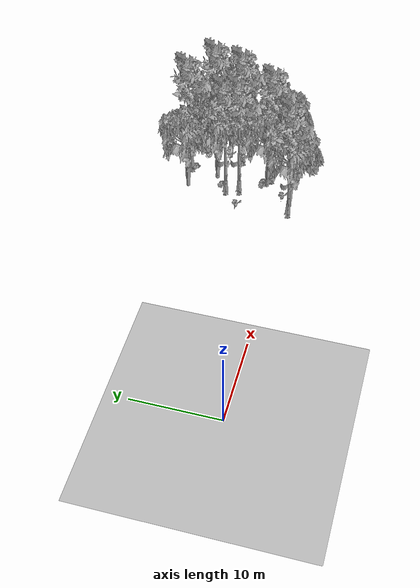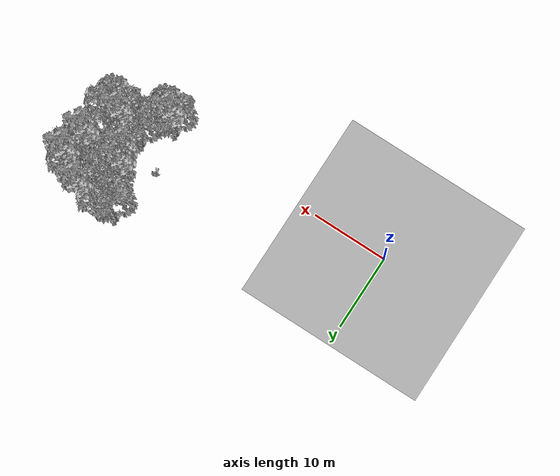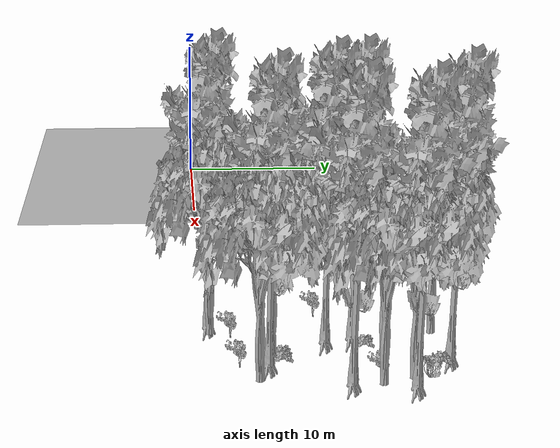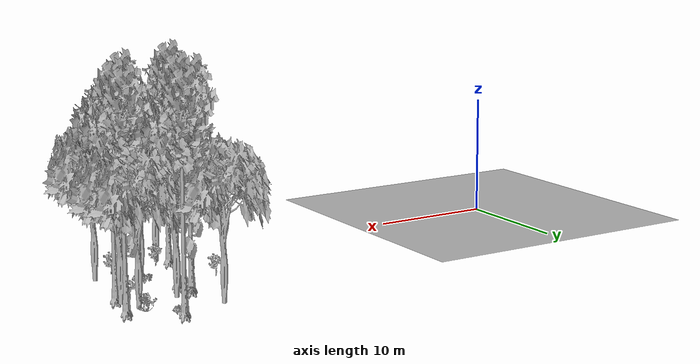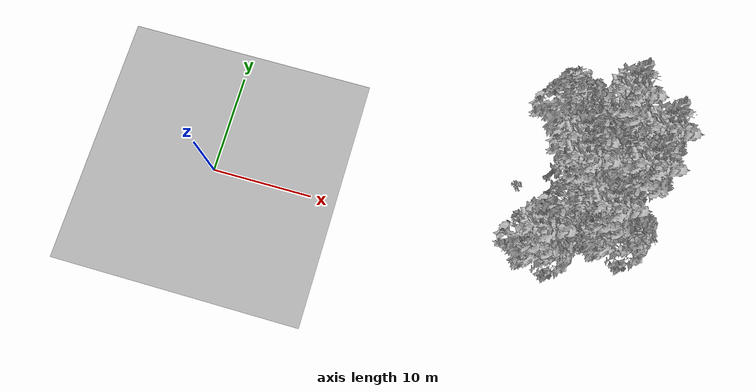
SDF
<sdf version="1.7">
 <world name="default">
  <model name="ground_plane">
   <static>1</static>
   <link name="link">
    <collision name="collision">
     <pose>-50 0 0 0 -0 0</pose>
     <geometry><plane><normal>0 0 1</normal><size>80 80</size></plane></geometry>
     <surface><contact><ode><min_depth>0.01</min_depth><max_vel>0</max_vel></ode></contact></surface>
    </collision>
    <visual name="grass">
     <cast_shadows>0</cast_shadows>
     <geometry>
      <mesh>
       <scale>0.46714285714285714 0.46714285714285714 0.1</scale>
       <uri>file://grass_plane/meshes/grass_plane.dae</uri>
      </mesh>
     </geometry>
    </visual>
   </link>
  </model>
  <model name="Tree 14">
   <static>1</static>
   <pose>35.54837640141666 3.432613627975698 0 1.57079 -0 0</pose>
   <link name="link">
    <collision name="collision">
     <geometry><mesh><scale>3.5 5 3.5</scale><uri>model://tree_9/meshes/tree_9.obj</uri></mesh></geometry>
    </collision>
    <visual name="visual">
     <geometry><mesh><scale>3.5 5 3.5</scale><uri>model://tree_9/meshes/tree_9.obj</uri></mesh></geometry>
    </visual>
   </link>
  </model>
  <model name="Tree 30">
   <static>1</static>
   <pose>31.346710138533155 0.31831738416364175 0 1.57079 -0 0</pose>
   <link name="link">
    <collision name="collision">
     <geometry><mesh><scale>3.5 5 3.5</scale><uri>model://tree_2/meshes/tree_2.obj</uri></mesh></geometry>
    </collision>
    <visual name="visual">
     <geometry><mesh><scale>3.5 5 3.5</scale><uri>model://tree_2/meshes/tree_2.obj</uri></mesh></geometry>
    </visual>
   </link>
  </model>
  <model name="Tree 116">
   <static>1</static>
   <pose>38.49103548607417 11.014796412921783 0 1.57079 -0 0</pose>
   <link name="link">
    <collision name="collision">
     <geometry><mesh><scale>3.5 5 3.5</scale><uri>model://tree_9/meshes/tree_9.obj</uri></mesh></geometry>
    </collision>
    <visual name="visual">
     <geometry><mesh><scale>3.5 5 3.5</scale><uri>model://tree_9/meshes/tree_9.obj</uri></mesh></geometry>
    </visual>
   </link>
  </model>
  <model name="Tree 188">
   <static>1</static>
   <pose>31.75541068733365 12.997560349149609 0 1.57079 -0 0</pose>
   <link name="link">
    <collision name="collision">
     <geometry><mesh><scale>3.5 5 3.5</scale><uri>model://tree_2/meshes/tree_2.obj</uri></mesh></geometry>
    </collision>
    <visual name="visual">
     <geometry><mesh><scale>3.5 5 3.5</scale><uri>model://tree_2/meshes/tree_2.obj</uri></mesh></geometry>
    </visual>
   </link>
  </model>
  <model name="Tree 311">
   <static>1</static>
   <pose>37.43862699710185 10.98620305104319 0 1.57079 -0 0</pose>
   <link name="link">
    <collision name="collision">
     <geometry><mesh><scale>3.5 5 3.5</scale><uri>model://tree_2/meshes/tree_2.obj</uri></mesh></geometry>
    </collision>
    <visual name="visual">
     <geometry><mesh><scale>3.5 5 3.5</scale><uri>model://tree_2/meshes/tree_2.obj</uri></mesh></geometry>
    </visual>
   </link>
  </model>
  <model name="Tree 350">
   <static>1</static>
   <pose>34.01714777694417 9.904949937485256 0 1.57079 -0 0</pose>
   <link name="link">
    <collision name="collision">
     <geometry><mesh><scale>3.5 5 3.5</scale><uri>model://tree_2/meshes/tree_2.obj</uri></mesh></geometry>
    </collision>
    <visual name="visual">
     <geometry><mesh><scale>3.5 5 3.5</scale><uri>model://tree_2/meshes/tree_2.obj</uri></mesh></geometry>
    </visual>
   </link>
  </model>
  <model name="Tree 386">
   <static>1</static>
   <pose>38.07354339036192 9.273002710352472 0 1.57079 -0 0</pose>
   <link name="link">
    <collision name="collision">
     <geometry><mesh><scale>3.5 5 3.5</scale><uri>model://tree_2/meshes/tree_2.obj</uri></mesh></geometry>
    </collision>
    <visual name="visual">
     <geometry><mesh><scale>3.5 5 3.5</scale><uri>model://tree_2/meshes/tree_2.obj</uri></mesh></geometry>
    </visual>
   </link>
  </model>
  <model name="Tree 396">
   <static>1</static>
   <pose>35.148854757798645 13.474000785816436 0 1.57079 -0 0</pose>
   <link name="link">
    <collision name="collision">
     <geometry><mesh><scale>3.5 5 3.5</scale><uri>model://tree_9/meshes/tree_9.obj</uri></mesh></geometry>
    </collision>
    <visual name="visual">
     <geometry><mesh><scale>3.5 5 3.5</scale><uri>model://tree_9/meshes/tree_9.obj</uri></mesh></geometry>
    </visual>
   </link>
  </model>
  <model name="Tree 478">
   <static>1</static>
   <pose>37.91706673461995 7.678815865900255 0 1.57079 -0 0</pose>
   <link name="link">
    <collision name="collision">
     <geometry><mesh><scale>3.5 5 3.5</scale><uri>model://tree_9/meshes/tree_9.obj</uri></mesh></geometry>
    </collision>
    <visual name="visual">
     <geometry><mesh><scale>3.5 5 3.5</scale><uri>model://tree_9/meshes/tree_9.obj</uri></mesh></geometry>
    </visual>
   </link>
  </model>
  <model name="Tree 488">
   <static>1</static>
   <pose>34.081910887290775 3.6773983197589573 0 1.57079 -0 0</pose>
   <link name="link">
    <collision name="collision">
     <geometry><mesh><scale>3.5 5 3.5</scale><uri>model://tree_2/meshes/tree_2.obj</uri></mesh></geometry>
    </collision>
    <visual name="visual">
     <geometry><mesh><scale>3.5 5 3.5</scale><uri>model://tree_2/meshes/tree_2.obj</uri></mesh></geometry>
    </visual>
   </link>
  </model>
  <model name="Tree 548">
   <static>1</static>
   <pose>32.20801763345338 8.394824363013882 0 1.57079 -0 0</pose>
   <link name="link">
    <collision name="collision">
     <geometry><mesh><scale>3.5 5 3.5</scale><uri>model://tree_9/meshes/tree_9.obj</uri></mesh></geometry>
    </collision>
    <visual name="visual">
     <geometry><mesh><scale>3.5 5 3.5</scale><uri>model://tree_9/meshes/tree_9.obj</uri></mesh></geometry>
    </visual>
   </link>
  </model>
  <model name="Tree 565">
   <static>1</static>
   <pose>32.61960503621012 6.824261044901476 0 1.57079 -0 0</pose>
   <link name="link">
    <collision name="collision">
     <geometry><mesh><scale>3.5 5 3.5</scale><uri>model://tree_9/meshes/tree_9.obj</uri></mesh></geometry>
    </collision>
    <visual name="visual">
     <geometry><mesh><scale>3.5 5 3.5</scale><uri>model://tree_9/meshes/tree_9.obj</uri></mesh></geometry>
    </visual>
   </link>
  </model>
  <model name="Tree 575">
   <static>1</static>
   <pose>30.30354869961772 0.2547916488059414 0 1.57079 -0 0</pose>
   <link name="link">
    <collision name="collision">
     <geometry><mesh><scale>3.5 5 3.5</scale><uri>model://tree_9/meshes/tree_9.obj</uri></mesh></geometry>
    </collision>
    <visual name="visual">
     <geometry><mesh><scale>3.5 5 3.5</scale><uri>model://tree_9/meshes/tree_9.obj</uri></mesh></geometry>
    </visual>
   </link>
  </model>
  <model name="Tree 637">
   <static>1</static>
   <pose>37.410260205318195 2.7590621265088444 0 1.57079 -0 0</pose>
   <link name="link">
    <collision name="collision">
     <geometry><mesh><scale>3.5 5 3.5</scale><uri>model://tree_2/meshes/tree_2.obj</uri></mesh></geometry>
    </collision>
    <visual name="visual">
     <geometry><mesh><scale>3.5 5 3.5</scale><uri>model://tree_2/meshes/tree_2.obj</uri></mesh></geometry>
    </visual>
   </link>
  </model>
  <model name="Bush 11">
   <static>1</static>
   <pose>35.817970439966004 1.8056202392931908 0 1.57079 -0 0</pose>
   <link name="link">
    <collision name="collision">
     <geometry><mesh><scale>2 2 2</scale><uri>model://bush_5/meshes/bush_5.obj</uri></mesh></geometry>
     <surface><contact><collide_without_contact>false</collide_without_contact></contact></surface>
    </collision>
    <visual name="visual">
     <geometry><mesh><scale>2 2 2</scale><uri>model://bush_5/meshes/bush_5.obj</uri></mesh></geometry>
    </visual>
   </link>
  </model>
  <model name="Bush 209">
   <static>1</static>
   <pose>34.09453291568184 4.251735187424366 0 1.57079 -0 0</pose>
   <link name="link">
    <collision name="collision">
     <geometry><mesh><scale>2 2 2</scale><uri>model://bush_2/meshes/bush_2.obj</uri></mesh></geometry>
     <surface><contact><collide_without_contact>false</collide_without_contact></contact></surface>
    </collision>
    <visual name="visual">
     <geometry><mesh><scale>2 2 2</scale><uri>model://bush_2/meshes/bush_2.obj</uri></mesh></geometry>
    </visual>
   </link>
  </model>
  <model name="Bush 245">
   <static>1</static>
   <pose>37.37750442861673 11.902391146051812 0 1.57079 -0 0</pose>
   <link name="link">
    <collision name="collision">
     <geometry><mesh><scale>2 2 2</scale><uri>model://bush_4/meshes/bush_4.obj</uri></mesh></geometry>
     <surface><contact><collide_without_contact>false</collide_without_contact></contact></surface>
    </collision>
    <visual name="visual">
     <geometry><mesh><scale>2 2 2</scale><uri>model://bush_4/meshes/bush_4.obj</uri></mesh></geometry>
    </visual>
   </link>
  </model>
  <model name="Bush 274">
   <static>1</static>
   <pose>31.993056121703532 1.4833647916942851 0 1.57079 -0 0</pose>
   <link name="link">
    <collision name="collision">
     <geometry><mesh><scale>2 2 2</scale><uri>model://bush_5/meshes/bush_5.obj</uri></mesh></geometry>
     <surface><contact><collide_without_contact>false</collide_without_contact></contact></surface>
    </collision>
    <visual name="visual">
     <geometry><mesh><scale>2 2 2</scale><uri>model://bush_5/meshes/bush_5.obj</uri></mesh></geometry>
    </visual>
   </link>
  </model>
  <model name="Bush 310">
   <static>1</static>
   <pose>37.548312588085224 9.272374110953137 0 1.57079 -0 0</pose>
   <link name="link">
    <collision name="collision">
     <geometry><mesh><scale>2 2 2</scale><uri>model://bush_5/meshes/bush_5.obj</uri></mesh></geometry>
     <surface><contact><collide_without_contact>false</collide_without_contact></contact></surface>
    </collision>
    <visual name="visual">
     <geometry><mesh><scale>2 2 2</scale><uri>model://bush_5/meshes/bush_5.obj</uri></mesh></geometry>
    </visual>
   </link>
  </model>
  <model name="Bush 425">
   <static>1</static>
   <pose>35.251197383672846 12.995963497162542 0 1.57079 -0 0</pose>
   <link name="link">
    <collision name="collision">
     <geometry><mesh><scale>2 2 2</scale><uri>model://bush_2/meshes/bush_2.obj</uri></mesh></geometry>
     <surface><contact><collide_without_contact>false</collide_without_contact></contact></surface>
    </collision>
    <visual name="visual">
     <geometry><mesh><scale>2 2 2</scale><uri>model://bush_2/meshes/bush_2.obj</uri></mesh></geometry>
    </visual>
   </link>
  </model>
  <model name="Bush 443">
   <static>1</static>
   <pose>32.91954938042572 9.058228840839469 0 1.57079 -0 0</pose>
   <link name="link">
    <collision name="collision">
     <geometry><mesh><scale>2 2 2</scale><uri>model://bush_2/meshes/bush_2.obj</uri></mesh></geometry>
     <surface><contact><collide_without_contact>false</collide_without_contact></contact></surface>
    </collision>
    <visual name="visual">
     <geometry><mesh><scale>2 2 2</scale><uri>model://bush_2/meshes/bush_2.obj</uri></mesh></geometry>
    </visual>
   </link>
  </model>
  <model name="Bush 516">
   <static>1</static>
   <pose>29.301482068910744 6.521698842424087 0 1.57079 -0 0</pose>
   <link name="link">
    <collision name="collision">
     <geometry><mesh><scale>2 2 2</scale><uri>model://bush_5/meshes/bush_5.obj</uri></mesh></geometry>
     <surface><contact><collide_without_contact>false</collide_without_contact></contact></surface>
    </collision>
    <visual name="visual">
     <geometry><mesh><scale>2 2 2</scale><uri>model://bush_5/meshes/bush_5.obj</uri></mesh></geometry>
    </visual>
   </link>
  </model>
  <model name="Bush 523">
   <static>1</static>
   <pose>34.58849942817602 4.29502605473003 0 1.57079 -0 0</pose>
   <link name="link">
    <collision name="collision">
     <geometry><mesh><scale>2 2 2</scale><uri>model://bush_2/meshes/bush_2.obj</uri></mesh></geometry>
     <surface><contact><collide_without_contact>false</collide_without_contact></contact></surface>
    </collision>
    <visual name="visual">
     <geometry><mesh><scale>2 2 2</scale><uri>model://bush_2/meshes/bush_2.obj</uri></mesh></geometry>
    </visual>
   </link>
  </model>
 </world>
</sdf>
